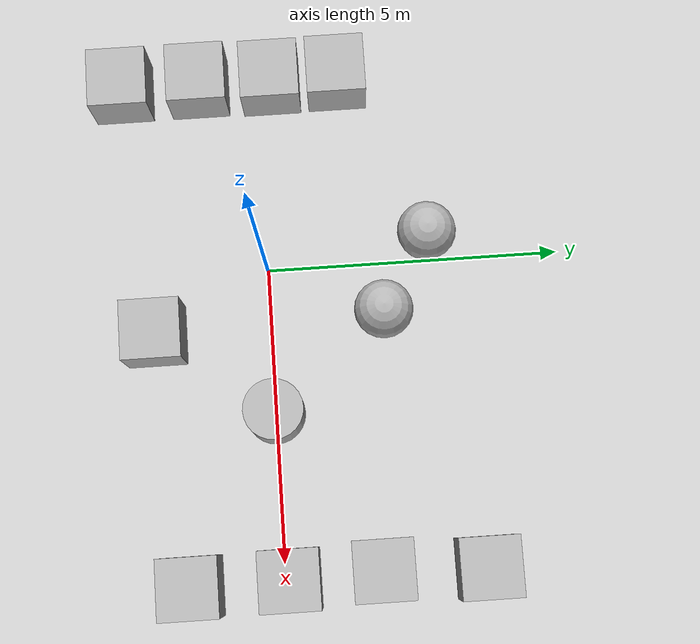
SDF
<sdf version='1.9'>
  <world name='zls'>
    <physics name='1ms' type='ignored'>
      <max_step_size>0.001</max_step_size>
      <real_time_factor>1</real_time_factor>
      <real_time_update_rate>1000</real_time_update_rate>
    </physics>
    <plugin name='ignition::gazebo::systems::Physics' filename='ignition-gazebo-physics-system'/>
    <plugin name='ignition::gazebo::systems::UserCommands' filename='ignition-gazebo-user-commands-system'/>
    <plugin name='ignition::gazebo::systems::SceneBroadcaster' filename='ignition-gazebo-scene-broadcaster-system'/>
    <plugin name='ignition::gazebo::systems::Contact' filename='ignition-gazebo-contact-system'/>

    <gui fullscreen="0">

      <!-- 3D scene -->
      <plugin filename="MinimalScene" name="3D View">
        <ignition-gui>
          <title>3D View</title>
          <property type="bool" key="showTitleBar">false</property>
          <property type="string" key="state">docked</property>
        </ignition-gui>

        <engine>ogre2</engine>
        <scene>scene</scene>
        <ambient_light>0.4 0.4 0.4</ambient_light>
        <background_color>0.8 0.8 0.8</background_color>
        <camera_pose>-6 0 6 0 0.5 0</camera_pose>
      </plugin>

      <!-- Plugins that add functionality to the scene -->
      <plugin filename="EntityContextMenuPlugin" name="Entity context menu">
        <ignition-gui>
          <property key="state" type="string">floating</property>
          <property key="width" type="double">5</property>
          <property key="height" type="double">5</property>
          <property key="showTitleBar" type="bool">false</property>
        </ignition-gui>
      </plugin>
      <plugin filename="GzSceneManager" name="Scene Manager">
        <ignition-gui>
          <property key="resizable" type="bool">false</property>
          <property key="width" type="double">5</property>
          <property key="height" type="double">5</property>
          <property key="state" type="string">floating</property>
          <property key="showTitleBar" type="bool">false</property>
        </ignition-gui>
      </plugin>
      <plugin filename="InteractiveViewControl" name="Interactive view control">
        <ignition-gui>
          <property key="resizable" type="bool">false</property>
          <property key="width" type="double">5</property>
          <property key="height" type="double">5</property>
          <property key="state" type="string">floating</property>
          <property key="showTitleBar" type="bool">false</property>
        </ignition-gui>
      </plugin>

      <!-- World control -->
      <plugin filename="WorldControl" name="World control">
        <ignition-gui>
          <title>World control</title>
          <property type="bool" key="showTitleBar">false</property>
          <property type="bool" key="resizable">false</property>
          <property type="double" key="height">72</property>
          <property type="double" key="width">121</property>
          <property type="double" key="z">1</property>

          <property type="string" key="state">floating</property>
          <anchors target="3D View">
            <line own="left" target="left"/>
            <line own="bottom" target="bottom"/>
          </anchors>
        </ignition-gui>

        <play_pause>true</play_pause>
        <step>true</step>
        <start_paused>true</start_paused>
        <use_event>true</use_event>

      </plugin>

      <!-- World statistics -->
      <plugin filename="WorldStats" name="World stats">
        <ignition-gui>
          <title>World stats</title>
          <property type="bool" key="showTitleBar">false</property>
          <property type="bool" key="resizable">false</property>
          <property type="double" key="height">110</property>
          <property type="double" key="width">290</property>
          <property type="double" key="z">1</property>

          <property type="string" key="state">floating</property>
          <anchors target="3D View">
            <line own="right" target="right"/>
            <line own="bottom" target="bottom"/>
          </anchors>
        </ignition-gui>

        <sim_time>true</sim_time>
        <real_time>true</real_time>
        <real_time_factor>true</real_time_factor>
        <iterations>true</iterations>
      </plugin>

      <plugin filename="VisualizeLidar" name="Visualize Lidar">
      </plugin>

      <!-- Inspector -->
      <plugin filename="ComponentInspector" name="Component inspector">
        <ignition-gui>
          <property type="string" key="state">docked</property>
        </ignition-gui>
      </plugin>

      <!-- Entity tree -->
      <plugin filename="EntityTree" name="Entity tree">
        <ignition-gui>
          <property type="string" key="state">docked</property>
        </ignition-gui>
      </plugin>
    </gui>

    <gravity>0 0 -9.8</gravity>
    <magnetic_field>6e-06 2.3e-05 -4.2e-05</magnetic_field>
    <atmosphere type='adiabatic'/>
    <scene>
      <ambient>0.4 0.4 0.4 1</ambient>
      <background>0.7 0.7 0.7 1</background>
      <shadows>true</shadows>
    </scene>
    <model name='ground_plane'>
      <static>true</static>
      <link name='link'>
        <collision name='collision'>
          <geometry>
            <plane>
              <normal>0 0 1</normal>
              <size>100 100</size>
            </plane>
          </geometry>
          <surface>
            <friction>
              <ode/>
            </friction>
            <bounce/>
            <contact/>
          </surface>
        </collision>
        <visual name='visual'>
          <geometry>
            <plane>
              <normal>0 0 1</normal>
              <size>100 100</size>
            </plane>
          </geometry>
          <material>
            <ambient>0.8 0.8 0.8 1</ambient>
            <diffuse>0.8 0.8 0.8 1</diffuse>
            <specular>0.8 0.8 0.8 1</specular>
          </material>
        </visual>
        <pose>0 0 0 0 -0 0</pose>
        <inertial>
          <pose>0 0 0 0 -0 0</pose>
          <mass>1</mass>
          <inertia>
            <ixx>1</ixx>
            <ixy>0</ixy>
            <ixz>0</ixz>
            <iyy>1</iyy>
            <iyz>0</iyz>
            <izz>1</izz>
          </inertia>
        </inertial>
        <enable_wind>false</enable_wind>
      </link>
      <pose>0 0 0 0 -0 0</pose>
      <self_collide>false</self_collide>
    </model>
    <model name='sphere'>
      <pose>0.892041 1.92993 0.5 0 -0 0</pose>
      <link name='sphere_link'>
        <inertial>
          <inertia>
            <ixx>0.10000000000000001</ixx>
            <ixy>0</ixy>
            <ixz>0</ixz>
            <iyy>0.10000000000000001</iyy>
            <iyz>0</iyz>
            <izz>0.10000000000000001</izz>
          </inertia>
          <mass>1</mass>
          <pose>0 0 0 0 -0 0</pose>
        </inertial>
        <collision name='sphere_collision'>
          <geometry>
            <sphere>
              <radius>0.5</radius>
            </sphere>
          </geometry>
          <surface>
            <friction>
              <ode/>
            </friction>
            <bounce/>
            <contact/>
          </surface>
        </collision>
        <visual name='sphere_visual'>
          <geometry>
            <sphere>
              <radius>0.5</radius>
            </sphere>
          </geometry>
          <material>
            <ambient>0.3 0.3 0.3 1</ambient>
            <diffuse>0.7 0.7 0.7 1</diffuse>
            <specular>1 1 1 1</specular>
          </material>
        </visual>
        <pose>0 0 0 0 -0 0</pose>
        <enable_wind>false</enable_wind>
      </link>
      <static>false</static>
      <self_collide>false</self_collide>
    </model>
    <model name='box'>
      <pose>1.04305 -1.95855 0.5 0 -0 0</pose>
      <link name='box_link'>
        <inertial>
          <inertia>
            <ixx>0.16666</ixx>
            <ixy>0</ixy>
            <ixz>0</ixz>
            <iyy>0.16666</iyy>
            <iyz>0</iyz>
            <izz>0.16666</izz>
          </inertia>
          <mass>1</mass>
          <pose>0 0 0 0 -0 0</pose>
        </inertial>
        <collision name='box_collision'>
          <geometry>
            <box>
              <size>1 1 1</size>
            </box>
          </geometry>
          <surface>
            <friction>
              <ode/>
            </friction>
            <bounce/>
            <contact/>
          </surface>
        </collision>
        <visual name='box_visual'>
          <geometry>
            <box>
              <size>1 1 1</size>
            </box>
          </geometry>
          <material>
            <ambient>0.3 0.3 0.3 1</ambient>
            <diffuse>0.7 0.7 0.7 1</diffuse>
            <specular>1 1 1 1</specular>
          </material>
        </visual>
        <pose>0 0 0 0 -0 0</pose>
        <enable_wind>false</enable_wind>
      </link>
      <static>false</static>
      <self_collide>false</self_collide>
    </model>
    <model name='cylinder'>
      <pose>2.50674 -0.00307 0.5 0 -0 0</pose>
      <link name='cylinder_link'>
        <inertial>
          <inertia>
            <ixx>0.14580000000000001</ixx>
            <ixy>0</ixy>
            <ixz>0</ixz>
            <iyy>0.14580000000000001</iyy>
            <iyz>0</iyz>
            <izz>0.125</izz>
          </inertia>
          <mass>1</mass>
          <pose>0 0 0 0 -0 0</pose>
        </inertial>
        <collision name='cylinder_collision'>
          <geometry>
            <cylinder>
              <radius>0.5</radius>
              <length>1</length>
            </cylinder>
          </geometry>
          <surface>
            <friction>
              <ode/>
            </friction>
            <bounce/>
            <contact/>
          </surface>
        </collision>
        <visual name='cylinder_visual'>
          <geometry>
            <cylinder>
              <radius>0.5</radius>
              <length>1</length>
            </cylinder>
          </geometry>
          <material>
            <ambient>0.3 0.3 0.3 1</ambient>
            <diffuse>0.7 0.7 0.7 1</diffuse>
            <specular>1 1 1 1</specular>
          </material>
        </visual>
        <pose>0 0 0 0 -0 0</pose>
        <enable_wind>false</enable_wind>
      </link>
      <static>false</static>
      <self_collide>false</self_collide>
    </model>
    <model name='box_0'>
      <pose>-3.31474 0.238574 0.5 0 -0 0</pose>
      <link name='box_link'>
        <inertial>
          <inertia>
            <ixx>0.16666</ixx>
            <ixy>0</ixy>
            <ixz>0</ixz>
            <iyy>0.16666</iyy>
            <iyz>0</iyz>
            <izz>0.16666</izz>
          </inertia>
          <mass>1</mass>
          <pose>0 0 0 0 -0 0</pose>
        </inertial>
        <collision name='box_collision'>
          <geometry>
            <box>
              <size>1 1 1</size>
            </box>
          </geometry>
          <surface>
            <friction>
              <ode/>
            </friction>
            <bounce/>
            <contact/>
          </surface>
        </collision>
        <visual name='box_visual'>
          <geometry>
            <box>
              <size>1 1 1</size>
            </box>
          </geometry>
          <material>
            <ambient>0.3 0.3 0.3 1</ambient>
            <diffuse>0.7 0.7 0.7 1</diffuse>
            <specular>1 1 1 1</specular>
          </material>
        </visual>
        <pose>0 0 0 0 -0 0</pose>
        <enable_wind>false</enable_wind>
      </link>
      <static>false</static>
      <self_collide>false</self_collide>
    </model>
    <model name='box_1'>
      <pose>-3.32629 1.37932 0.5 0 -0 0</pose>
      <link name='box_link'>
        <inertial>
          <inertia>
            <ixx>0.16666</ixx>
            <ixy>0</ixy>
            <ixz>0</ixz>
            <iyy>0.16666</iyy>
            <iyz>0</iyz>
            <izz>0.16666</izz>
          </inertia>
          <mass>1</mass>
          <pose>0 0 0 0 -0 0</pose>
        </inertial>
        <collision name='box_collision'>
          <geometry>
            <box>
              <size>1 1 1</size>
            </box>
          </geometry>
          <surface>
            <friction>
              <ode/>
            </friction>
            <bounce/>
            <contact/>
          </surface>
        </collision>
        <visual name='box_visual'>
          <geometry>
            <box>
              <size>1 1 1</size>
            </box>
          </geometry>
          <material>
            <ambient>0.3 0.3 0.3 1</ambient>
            <diffuse>0.7 0.7 0.7 1</diffuse>
            <specular>1 1 1 1</specular>
          </material>
        </visual>
        <pose>0 0 0 0 -0 0</pose>
        <enable_wind>false</enable_wind>
      </link>
      <static>false</static>
      <self_collide>false</self_collide>
    </model>
    <model name='box_2'>
      <pose>-3.33899 -1.01679 0.5 0 -0 0</pose>
      <link name='box_link'>
        <inertial>
          <inertia>
            <ixx>0.16666</ixx>
            <ixy>0</ixy>
            <ixz>0</ixz>
            <iyy>0.16666</iyy>
            <iyz>0</iyz>
            <izz>0.16666</izz>
          </inertia>
          <mass>1</mass>
          <pose>0 0 0 0 -0 0</pose>
        </inertial>
        <collision name='box_collision'>
          <geometry>
            <box>
              <size>1 1 1</size>
            </box>
          </geometry>
          <surface>
            <friction>
              <ode/>
            </friction>
            <bounce/>
            <contact/>
          </surface>
        </collision>
        <visual name='box_visual'>
          <geometry>
            <box>
              <size>1 1 1</size>
            </box>
          </geometry>
          <material>
            <ambient>0.3 0.3 0.3 1</ambient>
            <diffuse>0.7 0.7 0.7 1</diffuse>
            <specular>1 1 1 1</specular>
          </material>
        </visual>
        <pose>0 0 0 0 -0 0</pose>
        <enable_wind>false</enable_wind>
      </link>
      <static>false</static>
      <self_collide>false</self_collide>
    </model>
    <model name='box_3'>
      <pose>-3.33453 -2.35326 0.5 0 -0 0</pose>
      <link name='box_link'>
        <inertial>
          <inertia>
            <ixx>0.16666</ixx>
            <ixy>0</ixy>
            <ixz>0</ixz>
            <iyy>0.16666</iyy>
            <iyz>0</iyz>
            <izz>0.16666</izz>
          </inertia>
          <mass>1</mass>
          <pose>0 0 0 0 -0 0</pose>
        </inertial>
        <collision name='box_collision'>
          <geometry>
            <box>
              <size>1 1 1</size>
            </box>
          </geometry>
          <surface>
            <friction>
              <ode/>
            </friction>
            <bounce/>
            <contact/>
          </surface>
        </collision>
        <visual name='box_visual'>
          <geometry>
            <box>
              <size>1 1 1</size>
            </box>
          </geometry>
          <material>
            <ambient>0.3 0.3 0.3 1</ambient>
            <diffuse>0.7 0.7 0.7 1</diffuse>
            <specular>1 1 1 1</specular>
          </material>
        </visual>
        <pose>0 0 0 0 -0 0</pose>
        <enable_wind>false</enable_wind>
      </link>
      <static>false</static>
      <self_collide>false</self_collide>
    </model>
    <model name='sphere_0'>
      <pose>-0.408912 2.75086 0.5 0 -0 0</pose>
      <link name='sphere_link'>
        <inertial>
          <inertia>
            <ixx>0.10000000000000001</ixx>
            <ixy>0</ixy>
            <ixz>0</ixz>
            <iyy>0.10000000000000001</iyy>
            <iyz>0</iyz>
            <izz>0.10000000000000001</izz>
          </inertia>
          <mass>1</mass>
          <pose>0 0 0 0 -0 0</pose>
        </inertial>
        <collision name='sphere_collision'>
          <geometry>
            <sphere>
              <radius>0.5</radius>
            </sphere>
          </geometry>
          <surface>
            <friction>
              <ode/>
            </friction>
            <bounce/>
            <contact/>
          </surface>
        </collision>
        <visual name='sphere_visual'>
          <geometry>
            <sphere>
              <radius>0.5</radius>
            </sphere>
          </geometry>
          <material>
            <ambient>0.3 0.3 0.3 1</ambient>
            <diffuse>0.7 0.7 0.7 1</diffuse>
            <specular>1 1 1 1</specular>
          </material>
        </visual>
        <pose>0 0 0 0 -0 0</pose>
        <enable_wind>false</enable_wind>
      </link>
      <static>false</static>
      <self_collide>false</self_collide>
    </model>
    <model name='box_4'>
      <pose>5.26984 3.33644 0.5 0 -0 0</pose>
      <link name='box_link'>
        <inertial>
          <inertia>
            <ixx>0.16666</ixx>
            <ixy>0</ixy>
            <ixz>0</ixz>
            <iyy>0.16666</iyy>
            <iyz>0</iyz>
            <izz>0.16666</izz>
          </inertia>
          <mass>1</mass>
          <pose>0 0 0 0 -0 0</pose>
        </inertial>
        <collision name='box_collision'>
          <geometry>
            <box>
              <size>1 1 1</size>
            </box>
          </geometry>
          <surface>
            <friction>
              <ode/>
            </friction>
            <bounce/>
            <contact/>
          </surface>
        </collision>
        <visual name='box_visual'>
          <geometry>
            <box>
              <size>1 1 1</size>
            </box>
          </geometry>
          <material>
            <ambient>0.3 0.3 0.3 1</ambient>
            <diffuse>0.7 0.7 0.7 1</diffuse>
            <specular>1 1 1 1</specular>
          </material>
        </visual>
        <pose>0 0 0 0 -0 0</pose>
        <enable_wind>false</enable_wind>
      </link>
      <static>false</static>
      <self_collide>false</self_collide>
    </model>
    <model name='box_5'>
      <pose>5.20169 1.62426 0.5 0 -0 0</pose>
      <link name='box_link'>
        <inertial>
          <inertia>
            <ixx>0.16666</ixx>
            <ixy>0</ixy>
            <ixz>0</ixz>
            <iyy>0.16666</iyy>
            <iyz>0</iyz>
            <izz>0.16666</izz>
          </inertia>
          <mass>1</mass>
          <pose>0 0 0 0 -0 0</pose>
        </inertial>
        <collision name='box_collision'>
          <geometry>
            <box>
              <size>1 1 1</size>
            </box>
          </geometry>
          <surface>
            <friction>
              <ode/>
            </friction>
            <bounce/>
            <contact/>
          </surface>
        </collision>
        <visual name='box_visual'>
          <geometry>
            <box>
              <size>1 1 1</size>
            </box>
          </geometry>
          <material>
            <ambient>0.3 0.3 0.3 1</ambient>
            <diffuse>0.7 0.7 0.7 1</diffuse>
            <specular>1 1 1 1</specular>
          </material>
        </visual>
        <pose>0 0 0 0 -0 0</pose>
        <enable_wind>false</enable_wind>
      </link>
      <static>false</static>
      <self_collide>false</self_collide>
    </model>
    <model name='box_6'>
      <pose>5.25947 0.093493 0.5 0 -0 0</pose>
      <link name='box_link'>
        <inertial>
          <inertia>
            <ixx>0.16666</ixx>
            <ixy>0</ixy>
            <ixz>0</ixz>
            <iyy>0.16666</iyy>
            <iyz>0</iyz>
            <izz>0.16666</izz>
          </inertia>
          <mass>1</mass>
          <pose>0 0 0 0 -0 0</pose>
        </inertial>
        <collision name='box_collision'>
          <geometry>
            <box>
              <size>1 1 1</size>
            </box>
          </geometry>
          <surface>
            <friction>
              <ode/>
            </friction>
            <bounce/>
            <contact/>
          </surface>
        </collision>
        <visual name='box_visual'>
          <geometry>
            <box>
              <size>1 1 1</size>
            </box>
          </geometry>
          <material>
            <ambient>0.3 0.3 0.3 1</ambient>
            <diffuse>0.7 0.7 0.7 1</diffuse>
            <specular>1 1 1 1</specular>
          </material>
        </visual>
        <pose>0 0 0 0 -0 0</pose>
        <enable_wind>false</enable_wind>
      </link>
      <static>false</static>
      <self_collide>false</self_collide>
    </model>
    <model name='box_7'>
      <pose>5.27862 -1.53205 0.5 0 -0 0</pose>
      <link name='box_link'>
        <inertial>
          <inertia>
            <ixx>0.16666</ixx>
            <ixy>0</ixy>
            <ixz>0</ixz>
            <iyy>0.16666</iyy>
            <iyz>0</iyz>
            <izz>0.16666</izz>
          </inertia>
          <mass>1</mass>
          <pose>0 0 0 0 -0 0</pose>
        </inertial>
        <collision name='box_collision'>
          <geometry>
            <box>
              <size>1 1 1</size>
            </box>
          </geometry>
          <surface>
            <friction>
              <ode/>
            </friction>
            <bounce/>
            <contact/>
          </surface>
        </collision>
        <visual name='box_visual'>
          <geometry>
            <box>
              <size>1 1 1</size>
            </box>
          </geometry>
          <material>
            <ambient>0.3 0.3 0.3 1</ambient>
            <diffuse>0.7 0.7 0.7 1</diffuse>
            <specular>1 1 1 1</specular>
          </material>
        </visual>
        <pose>0 0 0 0 -0 0</pose>
        <enable_wind>false</enable_wind>
      </link>
      <static>false</static>
      <self_collide>false</self_collide>
    </model>
    <light name='sun' type='directional'>
      <pose>0 0 10 0 -0 0</pose>
      <cast_shadows>true</cast_shadows>
      <intensity>1</intensity>
      <direction>-0.5 0.1 -0.9</direction>
      <diffuse>0.8 0.8 0.8 1</diffuse>
      <specular>0.2 0.2 0.2 1</specular>
      <attenuation>
        <range>1000</range>
        <linear>0.01</linear>
        <constant>0.90000000000000002</constant>
        <quadratic>0.001</quadratic>
      </attenuation>
      <spot>
        <inner_angle>0</inner_angle>
        <outer_angle>0</outer_angle>
        <falloff>0</falloff>
      </spot>
    </light>
  </world>
</sdf>
